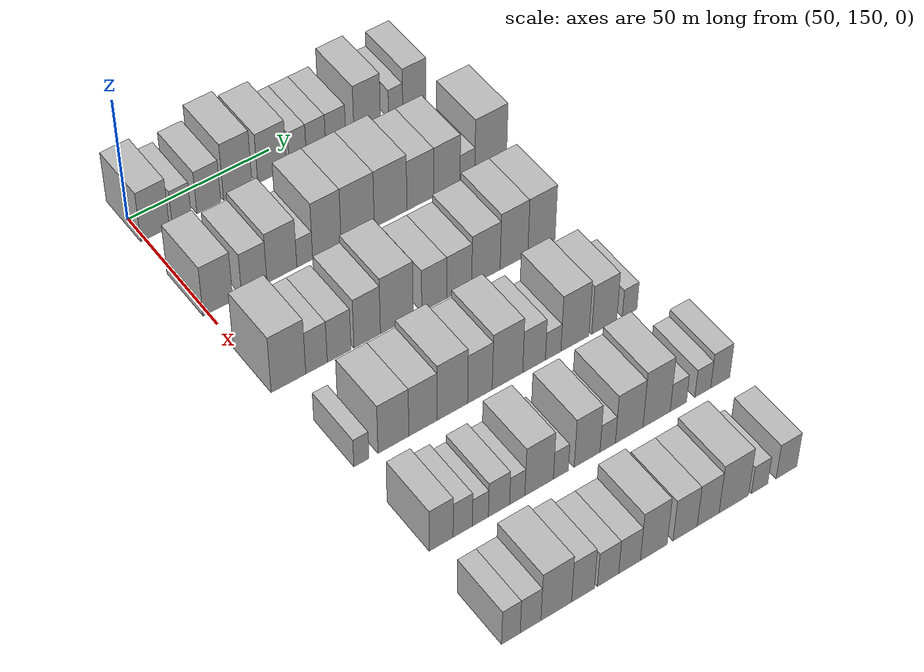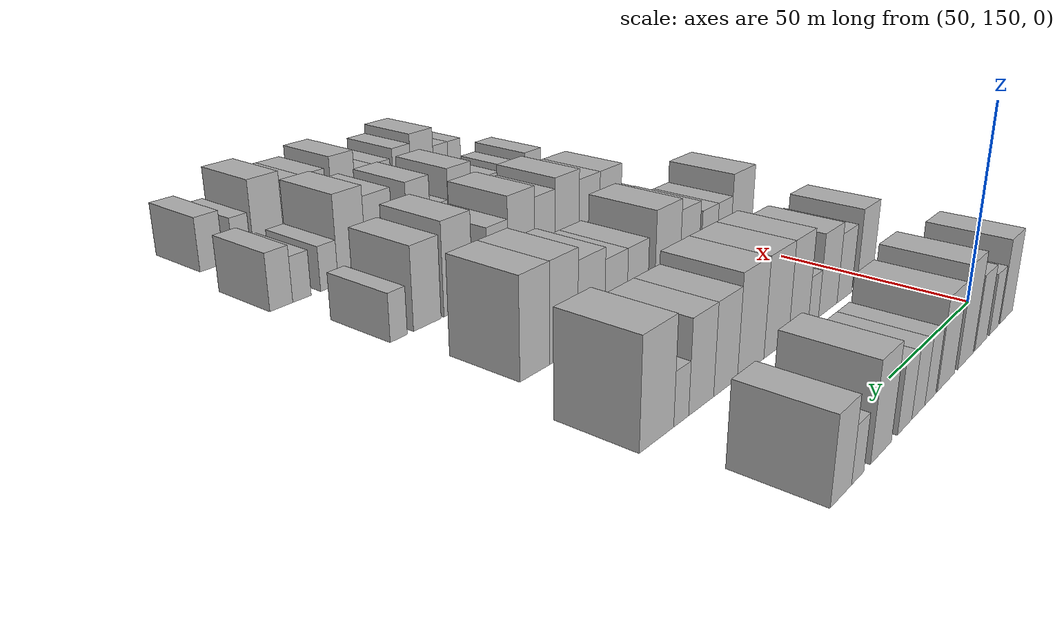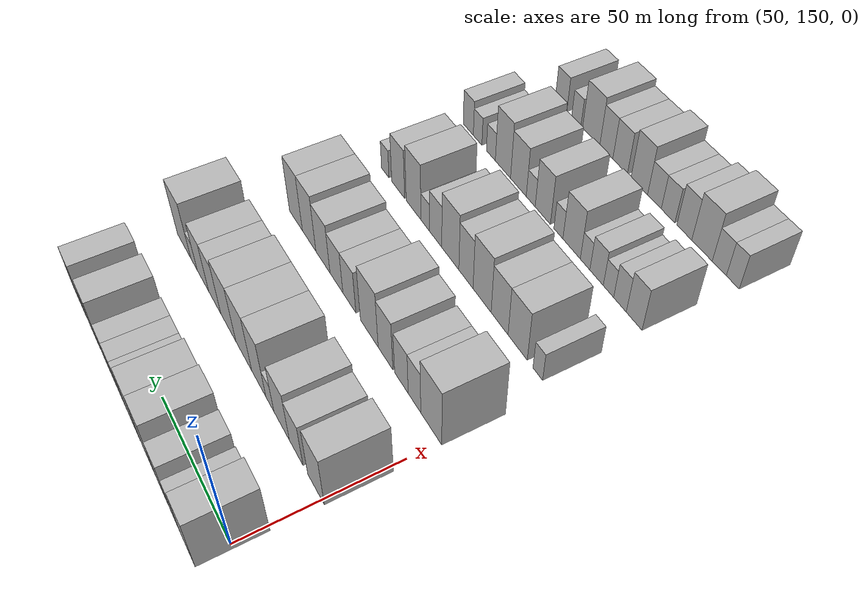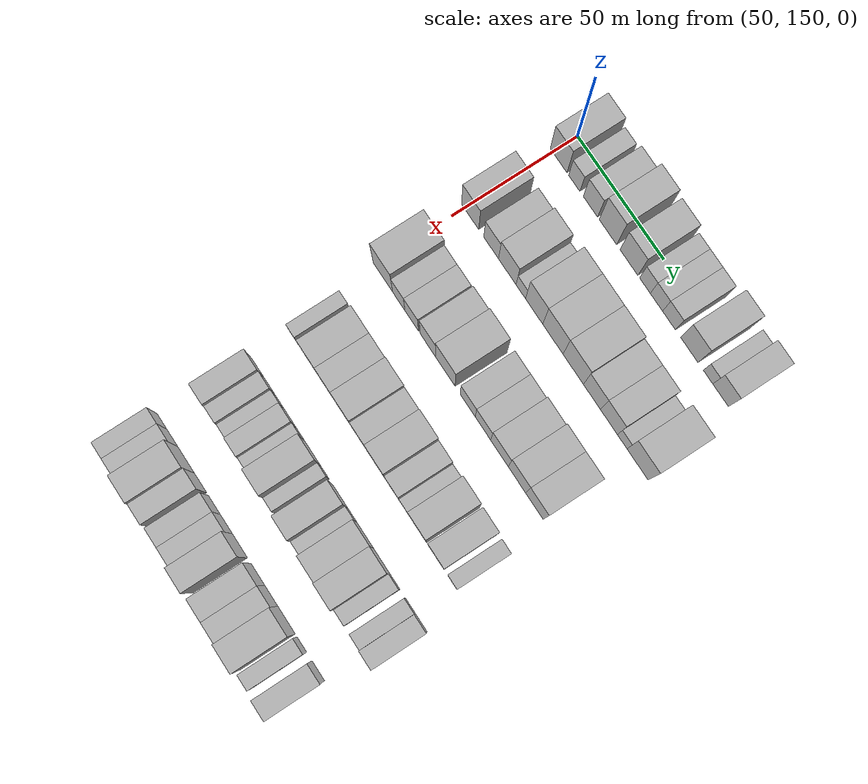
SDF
<sdf version="1.6">
 <world name="default">
  <model name="building_85">
   <static>1</static>
   <pose>50.0000 153.4325 0 0.000000 0.000000 0.000000</pose>
   <link name="link">
    <pose>0 0 10.50 0 0 0</pose>
    <collision name="collision"><geometry><box><size>20.0000 9.9005 21.0000</size></box></geometry></collision>
    <visual name="visual">
     <cast_shadows>0</cast_shadows>
     <geometry><box><size>20.0000 9.9005 21.0000</size></box></geometry>
     <material>
      <script>
       <uri>model://HANNAS_wall/materials/scripts</uri>
       <uri>model://HANNAS_wall/materials/textures</uri>
       <name>vrc/HANNAS_wall</name>
      </script>
     </material>
    </visual>
   </link>
  </model>
  <model name="building_86">
   <static>1</static>
   <pose>50.0000 162.6845 0 0.000000 0.000000 0.000000</pose>
   <link name="link">
    <pose>0 0 7.50 0 0 0</pose>
    <collision name="collision"><geometry><box><size>20.0000 6.6035 15.0000</size></box></geometry></collision>
    <visual name="visual">
     <cast_shadows>0</cast_shadows>
     <geometry><box><size>20.0000 6.6035 15.0000</size></box></geometry>
     <material>
      <script>
       <uri>model://HANNAS_wall/materials/scripts</uri>
       <uri>model://HANNAS_wall/materials/textures</uri>
       <name>vrc/HANNAS_wall</name>
      </script>
     </material>
    </visual>
   </link>
  </model>
  <model name="building_87">
   <static>1</static>
   <pose>50.0000 172.1829 0 0.000000 0.000000 0.000000</pose>
   <link name="link">
    <pose>0 0 9.00 0 0 0</pose>
    <collision name="collision"><geometry><box><size>20.0000 8.3932 18.0000</size></box></geometry></collision>
    <visual name="visual">
     <cast_shadows>0</cast_shadows>
     <geometry><box><size>20.0000 8.3932 18.0000</size></box></geometry>
     <material>
      <script>
       <uri>model://HANNAS_wall/materials/scripts</uri>
       <uri>model://HANNAS_wall/materials/textures</uri>
       <name>vrc/HANNAS_wall</name>
      </script>
     </material>
    </visual>
   </link>
  </model>
  <model name="building_88">
   <static>1</static>
   <pose>50.0000 182.4423 0 0.000000 0.000000 0.000000</pose>
   <link name="link">
    <pose>0 0 12.00 0 0 0</pose>
    <collision name="collision"><geometry><box><size>20.0000 10.1255 24.0000</size></box></geometry></collision>
    <visual name="visual">
     <cast_shadows>0</cast_shadows>
     <geometry><box><size>20.0000 10.1255 24.0000</size></box></geometry>
     <material>
      <script>
       <uri>model://HANNAS_wall/materials/scripts</uri>
       <uri>model://HANNAS_wall/materials/textures</uri>
       <name>vrc/HANNAS_wall</name>
      </script>
     </material>
    </visual>
   </link>
  </model>
  <model name="building_89">
   <static>1</static>
   <pose>50.0000 194.6784 0 0.000000 0.000000 0.000000</pose>
   <link name="link">
    <pose>0 0 10.50 0 0 0</pose>
    <collision name="collision"><geometry><box><size>20.0000 10.3466 21.0000</size></box></geometry></collision>
    <visual name="visual">
     <cast_shadows>0</cast_shadows>
     <geometry><box><size>20.0000 10.3466 21.0000</size></box></geometry>
     <material>
      <script>
       <uri>model://HANNAS_wall/materials/scripts</uri>
       <uri>model://HANNAS_wall/materials/textures</uri>
       <name>vrc/HANNAS_wall</name>
      </script>
     </material>
    </visual>
   </link>
  </model>
  <model name="building_90">
   <static>1</static>
   <pose>50.0000 203.9374 0 0.000000 0.000000 0.000000</pose>
   <link name="link">
    <pose>0 0 7.50 0 0 0</pose>
    <collision name="collision"><geometry><box><size>20.0000 6.1715 15.0000</size></box></geometry></collision>
    <visual name="visual">
     <cast_shadows>0</cast_shadows>
     <geometry><box><size>20.0000 6.1715 15.0000</size></box></geometry>
     <material>
      <script>
       <uri>model://HANNAS_wall/materials/scripts</uri>
       <uri>model://HANNAS_wall/materials/textures</uri>
       <name>vrc/HANNAS_wall</name>
      </script>
     </material>
    </visual>
   </link>
  </model>
  <model name="building_91">
   <static>1</static>
   <pose>50.0000 210.5509 0 0.000000 0.000000 0.000000</pose>
   <link name="link">
    <pose>0 0 7.50 0 0 0</pose>
    <collision name="collision"><geometry><box><size>20.0000 7.0554 15.0000</size></box></geometry></collision>
    <visual name="visual">
     <cast_shadows>0</cast_shadows>
     <geometry><box><size>20.0000 7.0554 15.0000</size></box></geometry>
     <material>
      <script>
       <uri>model://HANNAS_wall/materials/scripts</uri>
       <uri>model://HANNAS_wall/materials/textures</uri>
       <name>vrc/HANNAS_wall</name>
      </script>
     </material>
    </visual>
   </link>
  </model>
  <model name="building_92">
   <static>1</static>
   <pose>50.0000 217.7577 0 0.000000 0.000000 0.000000</pose>
   <link name="link">
    <pose>0 0 7.50 0 0 0</pose>
    <collision name="collision"><geometry><box><size>20.0000 7.3581 15.0000</size></box></geometry></collision>
    <visual name="visual">
     <cast_shadows>0</cast_shadows>
     <geometry><box><size>20.0000 7.3581 15.0000</size></box></geometry>
     <material>
      <script>
       <uri>model://HANNAS_wall/materials/scripts</uri>
       <uri>model://HANNAS_wall/materials/textures</uri>
       <name>vrc/HANNAS_wall</name>
      </script>
     </material>
    </visual>
   </link>
  </model>
  <model name="building_93">
   <static>1</static>
   <pose>50.0000 229.3631 0 0.000000 0.000000 0.000000</pose>
   <link name="link">
    <pose>0 0 10.50 0 0 0</pose>
    <collision name="collision"><geometry><box><size>20.0000 9.8529 21.0000</size></box></geometry></collision>
    <visual name="visual">
     <cast_shadows>0</cast_shadows>
     <geometry><box><size>20.0000 9.8529 21.0000</size></box></geometry>
     <material>
      <script>
       <uri>model://HANNAS_wall/materials/scripts</uri>
       <uri>model://HANNAS_wall/materials/textures</uri>
       <name>vrc/HANNAS_wall</name>
      </script>
     </material>
    </visual>
   </link>
  </model>
  <model name="building_94">
   <static>1</static>
   <pose>50.0000 239.9638 0 0.000000 0.000000 0.000000</pose>
   <link name="link">
    <pose>0 0 6.00 0 0 0</pose>
    <collision name="collision"><geometry><box><size>20.0000 5.3483 12.0000</size></box></geometry></collision>
    <visual name="visual">
     <cast_shadows>0</cast_shadows>
     <geometry><box><size>20.0000 5.3483 12.0000</size></box></geometry>
     <material>
      <script>
       <uri>model://HANNAS_wall/materials/scripts</uri>
       <uri>model://HANNAS_wall/materials/textures</uri>
       <name>vrc/HANNAS_wall</name>
      </script>
     </material>
    </visual>
   </link>
  </model>
  <model name="building_95">
   <static>1</static>
   <pose>50.0000 247.0273 0 0.000000 0.000000 0.000000</pose>
   <link name="link">
    <pose>0 0 9.00 0 0 0</pose>
    <collision name="collision"><geometry><box><size>20.0000 8.7788 18.0000</size></box></geometry></collision>
    <visual name="visual">
     <cast_shadows>0</cast_shadows>
     <geometry><box><size>20.0000 8.7788 18.0000</size></box></geometry>
     <material>
      <script>
       <uri>model://HANNAS_wall/materials/scripts</uri>
       <uri>model://HANNAS_wall/materials/textures</uri>
       <name>vrc/HANNAS_wall</name>
      </script>
     </material>
    </visual>
   </link>
  </model>
  <model name="building_212">
   <static>1</static>
   <pose>85.0000 153.4684 0 0.000000 0.000000 0.000000</pose>
   <link name="link">
    <pose>0 0 10.50 0 0 0</pose>
    <collision name="collision"><geometry><box><size>20.0000 10.1684 21.0000</size></box></geometry></collision>
    <visual name="visual">
     <cast_shadows>0</cast_shadows>
     <geometry><box><size>20.0000 10.1684 21.0000</size></box></geometry>
     <material>
      <script>
       <uri>model://HANNAS_wall/materials/scripts</uri>
       <uri>model://HANNAS_wall/materials/textures</uri>
       <name>vrc/HANNAS_wall</name>
      </script>
     </material>
    </visual>
   </link>
  </model>
  <model name="building_213">
   <static>1</static>
   <pose>85.0000 165.9379 0 0.000000 0.000000 0.000000</pose>
   <link name="link">
    <pose>0 0 9.00 0 0 0</pose>
    <collision name="collision"><geometry><box><size>20.0000 8.7706 18.0000</size></box></geometry></collision>
    <visual name="visual">
     <cast_shadows>0</cast_shadows>
     <geometry><box><size>20.0000 8.7706 18.0000</size></box></geometry>
     <material>
      <script>
       <uri>model://HANNAS_wall/materials/scripts</uri>
       <uri>model://HANNAS_wall/materials/textures</uri>
       <name>vrc/HANNAS_wall</name>
      </script>
     </material>
    </visual>
   </link>
  </model>
  <model name="building_214">
   <static>1</static>
   <pose>85.0000 175.5141 0 0.000000 0.000000 0.000000</pose>
   <link name="link">
    <pose>0 0 10.50 0 0 0</pose>
    <collision name="collision"><geometry><box><size>20.0000 10.3818 21.0000</size></box></geometry></collision>
    <visual name="visual">
     <cast_shadows>0</cast_shadows>
     <geometry><box><size>20.0000 10.3818 21.0000</size></box></geometry>
     <material>
      <script>
       <uri>model://HANNAS_wall/materials/scripts</uri>
       <uri>model://HANNAS_wall/materials/textures</uri>
       <name>vrc/HANNAS_wall</name>
      </script>
     </material>
    </visual>
   </link>
  </model>
  <model name="building_215">
   <static>1</static>
   <pose>85.0000 183.4832 0 0.000000 0.000000 0.000000</pose>
   <link name="link">
    <pose>0 0 6.00 0 0 0</pose>
    <collision name="collision"><geometry><box><size>20.0000 5.5563 12.0000</size></box></geometry></collision>
    <visual name="visual">
     <cast_shadows>0</cast_shadows>
     <geometry><box><size>20.0000 5.5563 12.0000</size></box></geometry>
     <material>
      <script>
       <uri>model://HANNAS_wall/materials/scripts</uri>
       <uri>model://HANNAS_wall/materials/textures</uri>
       <name>vrc/HANNAS_wall</name>
      </script>
     </material>
    </visual>
   </link>
  </model>
  <model name="building_216">
   <static>1</static>
   <pose>85.0000 191.3016 0 0.000000 0.000000 0.000000</pose>
   <link name="link">
    <pose>0 0 12.00 0 0 0</pose>
    <collision name="collision"><geometry><box><size>20.0000 10.0805 24.0000</size></box></geometry></collision>
    <visual name="visual">
     <cast_shadows>0</cast_shadows>
     <geometry><box><size>20.0000 10.0805 24.0000</size></box></geometry>
     <material>
      <script>
       <uri>model://HANNAS_wall/materials/scripts</uri>
       <uri>model://HANNAS_wall/materials/textures</uri>
       <name>vrc/HANNAS_wall</name>
      </script>
     </material>
    </visual>
   </link>
  </model>
  <model name="building_217">
   <static>1</static>
   <pose>85.0000 202.2507 0 0.000000 0.000000 0.000000</pose>
   <link name="link">
    <pose>0 0 12.00 0 0 0</pose>
    <collision name="collision"><geometry><box><size>20.0000 11.8178 24.0000</size></box></geometry></collision>
    <visual name="visual">
     <cast_shadows>0</cast_shadows>
     <geometry><box><size>20.0000 11.8178 24.0000</size></box></geometry>
     <material>
      <script>
       <uri>model://HANNAS_wall/materials/scripts</uri>
       <uri>model://HANNAS_wall/materials/textures</uri>
       <name>vrc/HANNAS_wall</name>
      </script>
     </material>
    </visual>
   </link>
  </model>
  <model name="building_218">
   <static>1</static>
   <pose>85.0000 214.0469 0 0.000000 0.000000 0.000000</pose>
   <link name="link">
    <pose>0 0 12.00 0 0 0</pose>
    <collision name="collision"><geometry><box><size>20.0000 11.7745 24.0000</size></box></geometry></collision>
    <visual name="visual">
     <cast_shadows>0</cast_shadows>
     <geometry><box><size>20.0000 11.7745 24.0000</size></box></geometry>
     <material>
      <script>
       <uri>model://HANNAS_wall/materials/scripts</uri>
       <uri>model://HANNAS_wall/materials/textures</uri>
       <name>vrc/HANNAS_wall</name>
      </script>
     </material>
    </visual>
   </link>
  </model>
  <model name="building_219">
   <static>1</static>
   <pose>85.0000 224.8386 0 0.000000 0.000000 0.000000</pose>
   <link name="link">
    <pose>0 0 10.50 0 0 0</pose>
    <collision name="collision"><geometry><box><size>20.0000 9.8091 21.0000</size></box></geometry></collision>
    <visual name="visual">
     <cast_shadows>0</cast_shadows>
     <geometry><box><size>20.0000 9.8091 21.0000</size></box></geometry>
     <material>
      <script>
       <uri>model://HANNAS_wall/materials/scripts</uri>
       <uri>model://HANNAS_wall/materials/textures</uri>
       <name>vrc/HANNAS_wall</name>
      </script>
     </material>
    </visual>
   </link>
  </model>
  <model name="building_220">
   <static>1</static>
   <pose>85.0000 234.5839 0 0.000000 0.000000 0.000000</pose>
   <link name="link">
    <pose>0 0 10.50 0 0 0</pose>
    <collision name="collision"><geometry><box><size>20.0000 9.6815 21.0000</size></box></geometry></collision>
    <visual name="visual">
     <cast_shadows>0</cast_shadows>
     <geometry><box><size>20.0000 9.6815 21.0000</size></box></geometry>
     <material>
      <script>
       <uri>model://HANNAS_wall/materials/scripts</uri>
       <uri>model://HANNAS_wall/materials/textures</uri>
       <name>vrc/HANNAS_wall</name>
      </script>
     </material>
    </visual>
   </link>
  </model>
  <model name="building_221">
   <static>1</static>
   <pose>85.0000 242.1540 0 0.000000 0.000000 0.000000</pose>
   <link name="link">
    <pose>0 0 6.00 0 0 0</pose>
    <collision name="collision"><geometry><box><size>20.0000 5.4586 12.0000</size></box></geometry></collision>
    <visual name="visual">
     <cast_shadows>0</cast_shadows>
     <geometry><box><size>20.0000 5.4586 12.0000</size></box></geometry>
     <material>
      <script>
       <uri>model://HANNAS_wall/materials/scripts</uri>
       <uri>model://HANNAS_wall/materials/textures</uri>
       <name>vrc/HANNAS_wall</name>
      </script>
     </material>
    </visual>
   </link>
  </model>
  <model name="building_222">
   <static>1</static>
   <pose>85.0000 250.8206 0 0.000000 0.000000 0.000000</pose>
   <link name="link">
    <pose>0 0 12.00 0 0 0</pose>
    <collision name="collision"><geometry><box><size>20.0000 11.8745 24.0000</size></box></geometry></collision>
    <visual name="visual">
     <cast_shadows>0</cast_shadows>
     <geometry><box><size>20.0000 11.8745 24.0000</size></box></geometry>
     <material>
      <script>
       <uri>model://HANNAS_wall/materials/scripts</uri>
       <uri>model://HANNAS_wall/materials/textures</uri>
       <name>vrc/HANNAS_wall</name>
      </script>
     </material>
    </visual>
   </link>
  </model>
  <model name="building_335">
   <static>1</static>
   <pose>120.0000 155.0125 0 0.000000 0.000000 0.000000</pose>
   <link name="link">
    <pose>0 0 12.00 0 0 0</pose>
    <collision name="collision"><geometry><box><size>20.0000 11.6717 24.0000</size></box></geometry></collision>
    <visual name="visual">
     <cast_shadows>0</cast_shadows>
     <geometry><box><size>20.0000 11.6717 24.0000</size></box></geometry>
     <material>
      <script>
       <uri>model://HANNAS_wall/materials/scripts</uri>
       <uri>model://HANNAS_wall/materials/textures</uri>
       <name>vrc/HANNAS_wall</name>
      </script>
     </material>
    </visual>
   </link>
  </model>
  <model name="building_336">
   <static>1</static>
   <pose>120.0000 164.5033 0 0.000000 0.000000 0.000000</pose>
   <link name="link">
    <pose>0 0 9.00 0 0 0</pose>
    <collision name="collision"><geometry><box><size>20.0000 7.3099 18.0000</size></box></geometry></collision>
    <visual name="visual">
     <cast_shadows>0</cast_shadows>
     <geometry><box><size>20.0000 7.3099 18.0000</size></box></geometry>
     <material>
      <script>
       <uri>model://HANNAS_wall/materials/scripts</uri>
       <uri>model://HANNAS_wall/materials/textures</uri>
       <name>vrc/HANNAS_wall</name>
      </script>
     </material>
    </visual>
   </link>
  </model>
  <model name="building_337">
   <static>1</static>
   <pose>120.0000 172.2174 0 0.000000 0.000000 0.000000</pose>
   <link name="link">
    <pose>0 0 9.00 0 0 0</pose>
    <collision name="collision"><geometry><box><size>20.0000 8.1182 18.0000</size></box></geometry></collision>
    <visual name="visual">
     <cast_shadows>0</cast_shadows>
     <geometry><box><size>20.0000 8.1182 18.0000</size></box></geometry>
     <material>
      <script>
       <uri>model://HANNAS_wall/materials/scripts</uri>
       <uri>model://HANNAS_wall/materials/textures</uri>
       <name>vrc/HANNAS_wall</name>
      </script>
     </material>
    </visual>
   </link>
  </model>
  <model name="building_338">
   <static>1</static>
   <pose>120.0000 181.8532 0 0.000000 0.000000 0.000000</pose>
   <link name="link">
    <pose>0 0 10.50 0 0 0</pose>
    <collision name="collision"><geometry><box><size>20.0000 9.1535 21.0000</size></box></geometry></collision>
    <visual name="visual">
     <cast_shadows>0</cast_shadows>
     <geometry><box><size>20.0000 9.1535 21.0000</size></box></geometry>
     <material>
      <script>
       <uri>model://HANNAS_wall/materials/scripts</uri>
       <uri>model://HANNAS_wall/materials/textures</uri>
       <name>vrc/HANNAS_wall</name>
      </script>
     </material>
    </visual>
   </link>
  </model>
  <model name="building_339">
   <static>1</static>
   <pose>120.0000 192.1507 0 0.000000 0.000000 0.000000</pose>
   <link name="link">
    <pose>0 0 12.00 0 0 0</pose>
    <collision name="collision"><geometry><box><size>20.0000 11.4415 24.0000</size></box></geometry></collision>
    <visual name="visual">
     <cast_shadows>0</cast_shadows>
     <geometry><box><size>20.0000 11.4415 24.0000</size></box></geometry>
     <material>
      <script>
       <uri>model://HANNAS_wall/materials/scripts</uri>
       <uri>model://HANNAS_wall/materials/textures</uri>
       <name>vrc/HANNAS_wall</name>
      </script>
     </material>
    </visual>
   </link>
  </model>
  <model name="building_340">
   <static>1</static>
   <pose>120.0000 205.2687 0 0.000000 0.000000 0.000000</pose>
   <link name="link">
    <pose>0 0 9.00 0 0 0</pose>
    <collision name="collision"><geometry><box><size>20.0000 8.7945 18.0000</size></box></geometry></collision>
    <visual name="visual">
     <cast_shadows>0</cast_shadows>
     <geometry><box><size>20.0000 8.7945 18.0000</size></box></geometry>
     <material>
      <script>
       <uri>model://HANNAS_wall/materials/scripts</uri>
       <uri>model://HANNAS_wall/materials/textures</uri>
       <name>vrc/HANNAS_wall</name>
      </script>
     </material>
    </visual>
   </link>
  </model>
  <model name="building_341">
   <static>1</static>
   <pose>120.0000 214.1536 0 0.000000 0.000000 0.000000</pose>
   <link name="link">
    <pose>0 0 9.00 0 0 0</pose>
    <collision name="collision"><geometry><box><size>20.0000 8.9752 18.0000</size></box></geometry></collision>
    <visual name="visual">
     <cast_shadows>0</cast_shadows>
     <geometry><box><size>20.0000 8.9752 18.0000</size></box></geometry>
     <material>
      <script>
       <uri>model://HANNAS_wall/materials/scripts</uri>
       <uri>model://HANNAS_wall/materials/textures</uri>
       <name>vrc/HANNAS_wall</name>
      </script>
     </material>
    </visual>
   </link>
  </model>
  <model name="building_342">
   <static>1</static>
   <pose>120.0000 223.7567 0 0.000000 0.000000 0.000000</pose>
   <link name="link">
    <pose>0 0 10.50 0 0 0</pose>
    <collision name="collision"><geometry><box><size>20.0000 10.2311 21.0000</size></box></geometry></collision>
    <visual name="visual">
     <cast_shadows>0</cast_shadows>
     <geometry><box><size>20.0000 10.2311 21.0000</size></box></geometry>
     <material>
      <script>
       <uri>model://HANNAS_wall/materials/scripts</uri>
       <uri>model://HANNAS_wall/materials/textures</uri>
       <name>vrc/HANNAS_wall</name>
      </script>
     </material>
    </visual>
   </link>
  </model>
  <model name="building_343">
   <static>1</static>
   <pose>120.0000 233.9110 0 0.000000 0.000000 0.000000</pose>
   <link name="link">
    <pose>0 0 12.00 0 0 0</pose>
    <collision name="collision"><geometry><box><size>20.0000 10.0775 24.0000</size></box></geometry></collision>
    <visual name="visual">
     <cast_shadows>0</cast_shadows>
     <geometry><box><size>20.0000 10.0775 24.0000</size></box></geometry>
     <material>
      <script>
       <uri>model://HANNAS_wall/materials/scripts</uri>
       <uri>model://HANNAS_wall/materials/textures</uri>
       <name>vrc/HANNAS_wall</name>
      </script>
     </material>
    </visual>
   </link>
  </model>
  <model name="building_344">
   <static>1</static>
   <pose>120.0000 243.9302 0 0.000000 0.000000 0.000000</pose>
   <link name="link">
    <pose>0 0 12.00 0 0 0</pose>
    <collision name="collision"><geometry><box><size>20.0000 9.9608 24.0000</size></box></geometry></collision>
    <visual name="visual">
     <cast_shadows>0</cast_shadows>
     <geometry><box><size>20.0000 9.9608 24.0000</size></box></geometry>
     <material>
      <script>
       <uri>model://HANNAS_wall/materials/scripts</uri>
       <uri>model://HANNAS_wall/materials/textures</uri>
       <name>vrc/HANNAS_wall</name>
      </script>
     </material>
    </visual>
   </link>
  </model>
  <model name="building_459">
   <static>1</static>
   <pose>155.0000 156.1623 0 0.000000 0.000000 0.000000</pose>
   <link name="link">
    <pose>0 0 6.00 0 0 0</pose>
    <collision name="collision"><geometry><box><size>20.0000 5.0198 12.0000</size></box></geometry></collision>
    <visual name="visual">
     <cast_shadows>0</cast_shadows>
     <geometry><box><size>20.0000 5.0198 12.0000</size></box></geometry>
     <material>
      <script>
       <uri>model://HANNAS_wall/materials/scripts</uri>
       <uri>model://HANNAS_wall/materials/textures</uri>
       <name>vrc/HANNAS_wall</name>
      </script>
     </material>
    </visual>
   </link>
  </model>
  <model name="building_460">
   <static>1</static>
   <pose>155.0000 166.8626 0 0.000000 0.000000 0.000000</pose>
   <link name="link">
    <pose>0 0 10.50 0 0 0</pose>
    <collision name="collision"><geometry><box><size>20.0000 10.3809 21.0000</size></box></geometry></collision>
    <visual name="visual">
     <cast_shadows>0</cast_shadows>
     <geometry><box><size>20.0000 10.3809 21.0000</size></box></geometry>
     <material>
      <script>
       <uri>model://HANNAS_wall/materials/scripts</uri>
       <uri>model://HANNAS_wall/materials/textures</uri>
       <name>vrc/HANNAS_wall</name>
      </script>
     </material>
    </visual>
   </link>
  </model>
  <model name="building_461">
   <static>1</static>
   <pose>155.0000 176.8120 0 0.000000 0.000000 0.000000</pose>
   <link name="link">
    <pose>0 0 10.50 0 0 0</pose>
    <collision name="collision"><geometry><box><size>20.0000 9.5180 21.0000</size></box></geometry></collision>
    <visual name="visual">
     <cast_shadows>0</cast_shadows>
     <geometry><box><size>20.0000 9.5180 21.0000</size></box></geometry>
     <material>
      <script>
       <uri>model://HANNAS_wall/materials/scripts</uri>
       <uri>model://HANNAS_wall/materials/textures</uri>
       <name>vrc/HANNAS_wall</name>
      </script>
     </material>
    </visual>
   </link>
  </model>
  <model name="building_462">
   <static>1</static>
   <pose>155.0000 186.8335 0 0.000000 0.000000 0.000000</pose>
   <link name="link">
    <pose>0 0 12.00 0 0 0</pose>
    <collision name="collision"><geometry><box><size>20.0000 10.5249 24.0000</size></box></geometry></collision>
    <visual name="visual">
     <cast_shadows>0</cast_shadows>
     <geometry><box><size>20.0000 10.5249 24.0000</size></box></geometry>
     <material>
      <script>
       <uri>model://HANNAS_wall/materials/scripts</uri>
       <uri>model://HANNAS_wall/materials/textures</uri>
       <name>vrc/HANNAS_wall</name>
      </script>
     </material>
    </visual>
   </link>
  </model>
  <model name="building_463">
   <static>1</static>
   <pose>155.0000 196.3749 0 0.000000 0.000000 0.000000</pose>
   <link name="link">
    <pose>0 0 10.50 0 0 0</pose>
    <collision name="collision"><geometry><box><size>20.0000 8.5579 21.0000</size></box></geometry></collision>
    <visual name="visual">
     <cast_shadows>0</cast_shadows>
     <geometry><box><size>20.0000 8.5579 21.0000</size></box></geometry>
     <material>
      <script>
       <uri>model://HANNAS_wall/materials/scripts</uri>
       <uri>model://HANNAS_wall/materials/textures</uri>
       <name>vrc/HANNAS_wall</name>
      </script>
     </material>
    </visual>
   </link>
  </model>
  <model name="building_464">
   <static>1</static>
   <pose>155.0000 205.9903 0 0.000000 0.000000 0.000000</pose>
   <link name="link">
    <pose>0 0 12.00 0 0 0</pose>
    <collision name="collision"><geometry><box><size>20.0000 10.6729 24.0000</size></box></geometry></collision>
    <visual name="visual">
     <cast_shadows>0</cast_shadows>
     <geometry><box><size>20.0000 10.6729 24.0000</size></box></geometry>
     <material>
      <script>
       <uri>model://HANNAS_wall/materials/scripts</uri>
       <uri>model://HANNAS_wall/materials/textures</uri>
       <name>vrc/HANNAS_wall</name>
      </script>
     </material>
    </visual>
   </link>
  </model>
  <model name="building_465">
   <static>1</static>
   <pose>155.0000 215.3147 0 0.000000 0.000000 0.000000</pose>
   <link name="link">
    <pose>0 0 9.00 0 0 0</pose>
    <collision name="collision"><geometry><box><size>20.0000 7.9758 18.0000</size></box></geometry></collision>
    <visual name="visual">
     <cast_shadows>0</cast_shadows>
     <geometry><box><size>20.0000 7.9758 18.0000</size></box></geometry>
     <material>
      <script>
       <uri>model://HANNAS_wall/materials/scripts</uri>
       <uri>model://HANNAS_wall/materials/textures</uri>
       <name>vrc/HANNAS_wall</name>
      </script>
     </material>
    </visual>
   </link>
  </model>
  <model name="building_466">
   <static>1</static>
   <pose>155.0000 222.0610 0 0.000000 0.000000 0.000000</pose>
   <link name="link">
    <pose>0 0 6.00 0 0 0</pose>
    <collision name="collision"><geometry><box><size>20.0000 5.5168 12.0000</size></box></geometry></collision>
    <visual name="visual">
     <cast_shadows>0</cast_shadows>
     <geometry><box><size>20.0000 5.5168 12.0000</size></box></geometry>
     <material>
      <script>
       <uri>model://HANNAS_wall/materials/scripts</uri>
       <uri>model://HANNAS_wall/materials/textures</uri>
       <name>vrc/HANNAS_wall</name>
      </script>
     </material>
    </visual>
   </link>
  </model>
  <model name="building_467">
   <static>1</static>
   <pose>155.0000 229.8469 0 0.000000 0.000000 0.000000</pose>
   <link name="link">
    <pose>0 0 12.00 0 0 0</pose>
    <collision name="collision"><geometry><box><size>20.0000 10.0551 24.0000</size></box></geometry></collision>
    <visual name="visual">
     <cast_shadows>0</cast_shadows>
     <geometry><box><size>20.0000 10.0551 24.0000</size></box></geometry>
     <material>
      <script>
       <uri>model://HANNAS_wall/materials/scripts</uri>
       <uri>model://HANNAS_wall/materials/textures</uri>
       <name>vrc/HANNAS_wall</name>
      </script>
     </material>
    </visual>
   </link>
  </model>
  <model name="building_468">
   <static>1</static>
   <pose>155.0000 240.4233 0 0.000000 0.000000 0.000000</pose>
   <link name="link">
    <pose>0 0 10.50 0 0 0</pose>
    <collision name="collision"><geometry><box><size>20.0000 9.0976 21.0000</size></box></geometry></collision>
    <visual name="visual">
     <cast_shadows>0</cast_shadows>
     <geometry><box><size>20.0000 9.0976 21.0000</size></box></geometry>
     <material>
      <script>
       <uri>model://HANNAS_wall/materials/scripts</uri>
       <uri>model://HANNAS_wall/materials/textures</uri>
       <name>vrc/HANNAS_wall</name>
      </script>
     </material>
    </visual>
   </link>
  </model>
  <model name="building_469">
   <static>1</static>
   <pose>155.0000 249.6468 0 0.000000 0.000000 0.000000</pose>
   <link name="link">
    <pose>0 0 6.00 0 0 0</pose>
    <collision name="collision"><geometry><box><size>20.0000 5.3495 12.0000</size></box></geometry></collision>
    <visual name="visual">
     <cast_shadows>0</cast_shadows>
     <geometry><box><size>20.0000 5.3495 12.0000</size></box></geometry>
     <material>
      <script>
       <uri>model://HANNAS_wall/materials/scripts</uri>
       <uri>model://HANNAS_wall/materials/textures</uri>
       <name>vrc/HANNAS_wall</name>
      </script>
     </material>
    </visual>
   </link>
  </model>
  <model name="building_589">
   <static>1</static>
   <pose>190.0000 158.3514 0 0.000000 0.000000 0.000000</pose>
   <link name="link">
    <pose>0 0 9.00 0 0 0</pose>
    <collision name="collision"><geometry><box><size>20.0000 7.8082 18.0000</size></box></geometry></collision>
    <visual name="visual">
     <cast_shadows>0</cast_shadows>
     <geometry><box><size>20.0000 7.8082 18.0000</size></box></geometry>
     <material>
      <script>
       <uri>model://HANNAS_wall/materials/scripts</uri>
       <uri>model://HANNAS_wall/materials/textures</uri>
       <name>vrc/HANNAS_wall</name>
      </script>
     </material>
    </visual>
   </link>
  </model>
  <model name="building_590">
   <static>1</static>
   <pose>190.0000 165.4515 0 0.000000 0.000000 0.000000</pose>
   <link name="link">
    <pose>0 0 7.50 0 0 0</pose>
    <collision name="collision"><geometry><box><size>20.0000 6.3918 15.0000</size></box></geometry></collision>
    <visual name="visual">
     <cast_shadows>0</cast_shadows>
     <geometry><box><size>20.0000 6.3918 15.0000</size></box></geometry>
     <material>
      <script>
       <uri>model://HANNAS_wall/materials/scripts</uri>
       <uri>model://HANNAS_wall/materials/textures</uri>
       <name>vrc/HANNAS_wall</name>
      </script>
     </material>
    </visual>
   </link>
  </model>
  <model name="building_591">
   <static>1</static>
   <pose>190.0000 171.3282 0 0.000000 0.000000 0.000000</pose>
   <link name="link">
    <pose>0 0 6.00 0 0 0</pose>
    <collision name="collision"><geometry><box><size>20.0000 5.3616 12.0000</size></box></geometry></collision>
    <visual name="visual">
     <cast_shadows>0</cast_shadows>
     <geometry><box><size>20.0000 5.3616 12.0000</size></box></geometry>
     <material>
      <script>
       <uri>model://HANNAS_wall/materials/scripts</uri>
       <uri>model://HANNAS_wall/materials/textures</uri>
       <name>vrc/HANNAS_wall</name>
      </script>
     </material>
    </visual>
   </link>
  </model>
  <model name="building_592">
   <static>1</static>
   <pose>190.0000 177.5590 0 0.000000 0.000000 0.000000</pose>
   <link name="link">
    <pose>0 0 7.50 0 0 0</pose>
    <collision name="collision"><geometry><box><size>20.0000 7.1002 15.0000</size></box></geometry></collision>
    <visual name="visual">
     <cast_shadows>0</cast_shadows>
     <geometry><box><size>20.0000 7.1002 15.0000</size></box></geometry>
     <material>
      <script>
       <uri>model://HANNAS_wall/materials/scripts</uri>
       <uri>model://HANNAS_wall/materials/textures</uri>
       <name>vrc/HANNAS_wall</name>
      </script>
     </material>
    </visual>
   </link>
  </model>
  <model name="building_593">
   <static>1</static>
   <pose>190.0000 183.6895 0 0.000000 0.000000 0.000000</pose>
   <link name="link">
    <pose>0 0 6.00 0 0 0</pose>
    <collision name="collision"><geometry><box><size>20.0000 5.1608 12.0000</size></box></geometry></collision>
    <visual name="visual">
     <cast_shadows>0</cast_shadows>
     <geometry><box><size>20.0000 5.1608 12.0000</size></box></geometry>
     <material>
      <script>
       <uri>model://HANNAS_wall/materials/scripts</uri>
       <uri>model://HANNAS_wall/materials/textures</uri>
       <name>vrc/HANNAS_wall</name>
      </script>
     </material>
    </visual>
   </link>
  </model>
  <model name="building_594">
   <static>1</static>
   <pose>190.0000 191.1136 0 0.000000 0.000000 0.000000</pose>
   <link name="link">
    <pose>0 0 10.50 0 0 0</pose>
    <collision name="collision"><geometry><box><size>20.0000 9.6873 21.0000</size></box></geometry></collision>
    <visual name="visual">
     <cast_shadows>0</cast_shadows>
     <geometry><box><size>20.0000 9.6873 21.0000</size></box></geometry>
     <material>
      <script>
       <uri>model://HANNAS_wall/materials/scripts</uri>
       <uri>model://HANNAS_wall/materials/textures</uri>
       <name>vrc/HANNAS_wall</name>
      </script>
     </material>
    </visual>
   </link>
  </model>
  <model name="building_595">
   <static>1</static>
   <pose>190.0000 198.5266 0 0.000000 0.000000 0.000000</pose>
   <link name="link">
    <pose>0 0 6.00 0 0 0</pose>
    <collision name="collision"><geometry><box><size>20.0000 5.1389 12.0000</size></box></geometry></collision>
    <visual name="visual">
     <cast_shadows>0</cast_shadows>
     <geometry><box><size>20.0000 5.1389 12.0000</size></box></geometry>
     <material>
      <script>
       <uri>model://HANNAS_wall/materials/scripts</uri>
       <uri>model://HANNAS_wall/materials/textures</uri>
       <name>vrc/HANNAS_wall</name>
      </script>
     </material>
    </visual>
   </link>
  </model>
  <model name="building_596">
   <static>1</static>
   <pose>190.0000 207.5601 0 0.000000 0.000000 0.000000</pose>
   <link name="link">
    <pose>0 0 10.50 0 0 0</pose>
    <collision name="collision"><geometry><box><size>20.0000 8.9281 21.0000</size></box></geometry></collision>
    <visual name="visual">
     <cast_shadows>0</cast_shadows>
     <geometry><box><size>20.0000 8.9281 21.0000</size></box></geometry>
     <material>
      <script>
       <uri>model://HANNAS_wall/materials/scripts</uri>
       <uri>model://HANNAS_wall/materials/textures</uri>
       <name>vrc/HANNAS_wall</name>
      </script>
     </material>
    </visual>
   </link>
  </model>
  <model name="building_597">
   <static>1</static>
   <pose>190.0000 214.7105 0 0.000000 0.000000 0.000000</pose>
   <link name="link">
    <pose>0 0 6.00 0 0 0</pose>
    <collision name="collision"><geometry><box><size>20.0000 5.3727 12.0000</size></box></geometry></collision>
    <visual name="visual">
     <cast_shadows>0</cast_shadows>
     <geometry><box><size>20.0000 5.3727 12.0000</size></box></geometry>
     <material>
      <script>
       <uri>model://HANNAS_wall/materials/scripts</uri>
       <uri>model://HANNAS_wall/materials/textures</uri>
       <name>vrc/HANNAS_wall</name>
      </script>
     </material>
    </visual>
   </link>
  </model>
  <model name="building_598">
   <static>1</static>
   <pose>190.0000 222.2485 0 0.000000 0.000000 0.000000</pose>
   <link name="link">
    <pose>0 0 10.50 0 0 0</pose>
    <collision name="collision"><geometry><box><size>20.0000 9.7035 21.0000</size></box></geometry></collision>
    <visual name="visual">
     <cast_shadows>0</cast_shadows>
     <geometry><box><size>20.0000 9.7035 21.0000</size></box></geometry>
     <material>
      <script>
       <uri>model://HANNAS_wall/materials/scripts</uri>
       <uri>model://HANNAS_wall/materials/textures</uri>
       <name>vrc/HANNAS_wall</name>
      </script>
     </material>
    </visual>
   </link>
  </model>
  <model name="building_599">
   <static>1</static>
   <pose>190.0000 231.9446 0 0.000000 0.000000 0.000000</pose>
   <link name="link">
    <pose>0 0 12.00 0 0 0</pose>
    <collision name="collision"><geometry><box><size>20.0000 9.6885 24.0000</size></box></geometry></collision>
    <visual name="visual">
     <cast_shadows>0</cast_shadows>
     <geometry><box><size>20.0000 9.6885 24.0000</size></box></geometry>
     <material>
      <script>
       <uri>model://HANNAS_wall/materials/scripts</uri>
       <uri>model://HANNAS_wall/materials/textures</uri>
       <name>vrc/HANNAS_wall</name>
      </script>
     </material>
    </visual>
   </link>
  </model>
  <model name="building_600">
   <static>1</static>
   <pose>190.0000 239.6969 0 0.000000 0.000000 0.000000</pose>
   <link name="link">
    <pose>0 0 6.00 0 0 0</pose>
    <collision name="collision"><geometry><box><size>20.0000 5.8161 12.0000</size></box></geometry></collision>
    <visual name="visual">
     <cast_shadows>0</cast_shadows>
     <geometry><box><size>20.0000 5.8161 12.0000</size></box></geometry>
     <material>
      <script>
       <uri>model://HANNAS_wall/materials/scripts</uri>
       <uri>model://HANNAS_wall/materials/textures</uri>
       <name>vrc/HANNAS_wall</name>
      </script>
     </material>
    </visual>
   </link>
  </model>
  <model name="building_601">
   <static>1</static>
   <pose>190.0000 248.4702 0 0.000000 0.000000 0.000000</pose>
   <link name="link">
    <pose>0 0 6.00 0 0 0</pose>
    <collision name="collision"><geometry><box><size>20.0000 5.7304 12.0000</size></box></geometry></collision>
    <visual name="visual">
     <cast_shadows>0</cast_shadows>
     <geometry><box><size>20.0000 5.7304 12.0000</size></box></geometry>
     <material>
      <script>
       <uri>model://HANNAS_wall/materials/scripts</uri>
       <uri>model://HANNAS_wall/materials/textures</uri>
       <name>vrc/HANNAS_wall</name>
      </script>
     </material>
    </visual>
   </link>
  </model>
  <model name="building_602">
   <static>1</static>
   <pose>190.0000 254.7834 0 0.000000 0.000000 0.000000</pose>
   <link name="link">
    <pose>0 0 7.50 0 0 0</pose>
    <collision name="collision"><geometry><box><size>20.0000 6.8961 15.0000</size></box></geometry></collision>
    <visual name="visual">
     <cast_shadows>0</cast_shadows>
     <geometry><box><size>20.0000 6.8961 15.0000</size></box></geometry>
     <material>
      <script>
       <uri>model://HANNAS_wall/materials/scripts</uri>
       <uri>model://HANNAS_wall/materials/textures</uri>
       <name>vrc/HANNAS_wall</name>
      </script>
     </material>
    </visual>
   </link>
  </model>
  <model name="building_716">
   <static>1</static>
   <pose>225.0000 155.9225 0 0.000000 0.000000 0.000000</pose>
   <link name="link">
    <pose>0 0 7.50 0 0 0</pose>
    <collision name="collision"><geometry><box><size>20.0000 6.0236 15.0000</size></box></geometry></collision>
    <visual name="visual">
     <cast_shadows>0</cast_shadows>
     <geometry><box><size>20.0000 6.0236 15.0000</size></box></geometry>
     <material>
      <script>
       <uri>model://HANNAS_wall/materials/scripts</uri>
       <uri>model://HANNAS_wall/materials/textures</uri>
       <name>vrc/HANNAS_wall</name>
      </script>
     </material>
    </visual>
   </link>
  </model>
  <model name="building_717">
   <static>1</static>
   <pose>225.0000 162.3064 0 0.000000 0.000000 0.000000</pose>
   <link name="link">
    <pose>0 0 7.50 0 0 0</pose>
    <collision name="collision"><geometry><box><size>20.0000 6.7442 15.0000</size></box></geometry></collision>
    <visual name="visual">
     <cast_shadows>0</cast_shadows>
     <geometry><box><size>20.0000 6.7442 15.0000</size></box></geometry>
     <material>
      <script>
       <uri>model://HANNAS_wall/materials/scripts</uri>
       <uri>model://HANNAS_wall/materials/textures</uri>
       <name>vrc/HANNAS_wall</name>
      </script>
     </material>
    </visual>
   </link>
  </model>
  <model name="building_718">
   <static>1</static>
   <pose>225.0000 170.7281 0 0.000000 0.000000 0.000000</pose>
   <link name="link">
    <pose>0 0 10.50 0 0 0</pose>
    <collision name="collision"><geometry><box><size>20.0000 10.0992 21.0000</size></box></geometry></collision>
    <visual name="visual">
     <cast_shadows>0</cast_shadows>
     <geometry><box><size>20.0000 10.0992 21.0000</size></box></geometry>
     <material>
      <script>
       <uri>model://HANNAS_wall/materials/scripts</uri>
       <uri>model://HANNAS_wall/materials/textures</uri>
       <name>vrc/HANNAS_wall</name>
      </script>
     </material>
    </visual>
   </link>
  </model>
  <model name="building_719">
   <static>1</static>
   <pose>225.0000 179.5634 0 0.000000 0.000000 0.000000</pose>
   <link name="link">
    <pose>0 0 9.00 0 0 0</pose>
    <collision name="collision"><geometry><box><size>20.0000 7.5714 18.0000</size></box></geometry></collision>
    <visual name="visual">
     <cast_shadows>0</cast_shadows>
     <geometry><box><size>20.0000 7.5714 18.0000</size></box></geometry>
     <material>
      <script>
       <uri>model://HANNAS_wall/materials/scripts</uri>
       <uri>model://HANNAS_wall/materials/textures</uri>
       <name>vrc/HANNAS_wall</name>
      </script>
     </material>
    </visual>
   </link>
  </model>
  <model name="building_720">
   <static>1</static>
   <pose>225.0000 187.9032 0 0.000000 0.000000 0.000000</pose>
   <link name="link">
    <pose>0 0 7.50 0 0 0</pose>
    <collision name="collision"><geometry><box><size>20.0000 7.1081 15.0000</size></box></geometry></collision>
    <visual name="visual">
     <cast_shadows>0</cast_shadows>
     <geometry><box><size>20.0000 7.1081 15.0000</size></box></geometry>
     <material>
      <script>
       <uri>model://HANNAS_wall/materials/scripts</uri>
       <uri>model://HANNAS_wall/materials/textures</uri>
       <name>vrc/HANNAS_wall</name>
      </script>
     </material>
    </visual>
   </link>
  </model>
  <model name="building_721">
   <static>1</static>
   <pose>225.0000 195.1234 0 0.000000 0.000000 0.000000</pose>
   <link name="link">
    <pose>0 0 7.50 0 0 0</pose>
    <collision name="collision"><geometry><box><size>20.0000 7.3323 15.0000</size></box></geometry></collision>
    <visual name="visual">
     <cast_shadows>0</cast_shadows>
     <geometry><box><size>20.0000 7.3323 15.0000</size></box></geometry>
     <material>
      <script>
       <uri>model://HANNAS_wall/materials/scripts</uri>
       <uri>model://HANNAS_wall/materials/textures</uri>
       <name>vrc/HANNAS_wall</name>
      </script>
     </material>
    </visual>
   </link>
  </model>
  <model name="building_722">
   <static>1</static>
   <pose>225.0000 203.3533 0 0.000000 0.000000 0.000000</pose>
   <link name="link">
    <pose>0 0 10.50 0 0 0</pose>
    <collision name="collision"><geometry><box><size>20.0000 9.1275 21.0000</size></box></geometry></collision>
    <visual name="visual">
     <cast_shadows>0</cast_shadows>
     <geometry><box><size>20.0000 9.1275 21.0000</size></box></geometry>
     <material>
      <script>
       <uri>model://HANNAS_wall/materials/scripts</uri>
       <uri>model://HANNAS_wall/materials/textures</uri>
       <name>vrc/HANNAS_wall</name>
      </script>
     </material>
    </visual>
   </link>
  </model>
  <model name="building_723">
   <static>1</static>
   <pose>225.0000 214.0767 0 0.000000 0.000000 0.000000</pose>
   <link name="link">
    <pose>0 0 9.00 0 0 0</pose>
    <collision name="collision"><geometry><box><size>20.0000 8.3192 18.0000</size></box></geometry></collision>
    <visual name="visual">
     <cast_shadows>0</cast_shadows>
     <geometry><box><size>20.0000 8.3192 18.0000</size></box></geometry>
     <material>
      <script>
       <uri>model://HANNAS_wall/materials/scripts</uri>
       <uri>model://HANNAS_wall/materials/textures</uri>
       <name>vrc/HANNAS_wall</name>
      </script>
     </material>
    </visual>
   </link>
  </model>
  <model name="building_724">
   <static>1</static>
   <pose>225.0000 222.0432 0 0.000000 0.000000 0.000000</pose>
   <link name="link">
    <pose>0 0 9.00 0 0 0</pose>
    <collision name="collision"><geometry><box><size>20.0000 7.6138 18.0000</size></box></geometry></collision>
    <visual name="visual">
     <cast_shadows>0</cast_shadows>
     <geometry><box><size>20.0000 7.6138 18.0000</size></box></geometry>
     <material>
      <script>
       <uri>model://HANNAS_wall/materials/scripts</uri>
       <uri>model://HANNAS_wall/materials/textures</uri>
       <name>vrc/HANNAS_wall</name>
      </script>
     </material>
    </visual>
   </link>
  </model>
  <model name="building_725">
   <static>1</static>
   <pose>225.0000 231.0256 0 0.000000 0.000000 0.000000</pose>
   <link name="link">
    <pose>0 0 10.50 0 0 0</pose>
    <collision name="collision"><geometry><box><size>20.0000 10.3511 21.0000</size></box></geometry></collision>
    <visual name="visual">
     <cast_shadows>0</cast_shadows>
     <geometry><box><size>20.0000 10.3511 21.0000</size></box></geometry>
     <material>
      <script>
       <uri>model://HANNAS_wall/materials/scripts</uri>
       <uri>model://HANNAS_wall/materials/textures</uri>
       <name>vrc/HANNAS_wall</name>
      </script>
     </material>
    </visual>
   </link>
  </model>
  <model name="building_726">
   <static>1</static>
   <pose>225.0000 240.0879 0 0.000000 0.000000 0.000000</pose>
   <link name="link">
    <pose>0 0 6.00 0 0 0</pose>
    <collision name="collision"><geometry><box><size>20.0000 5.7734 12.0000</size></box></geometry></collision>
    <visual name="visual">
     <cast_shadows>0</cast_shadows>
     <geometry><box><size>20.0000 5.7734 12.0000</size></box></geometry>
     <material>
      <script>
       <uri>model://HANNAS_wall/materials/scripts</uri>
       <uri>model://HANNAS_wall/materials/textures</uri>
       <name>vrc/HANNAS_wall</name>
      </script>
     </material>
    </visual>
   </link>
  </model>
  <model name="building_727">
   <static>1</static>
   <pose>225.0000 249.6718 0 0.000000 0.000000 0.000000</pose>
   <link name="link">
    <pose>0 0 7.50 0 0 0</pose>
    <collision name="collision"><geometry><box><size>20.0000 7.3943 15.0000</size></box></geometry></collision>
    <visual name="visual">
     <cast_shadows>0</cast_shadows>
     <geometry><box><size>20.0000 7.3943 15.0000</size></box></geometry>
     <material>
      <script>
       <uri>model://HANNAS_wall/materials/scripts</uri>
       <uri>model://HANNAS_wall/materials/textures</uri>
       <name>vrc/HANNAS_wall</name>
      </script>
     </material>
    </visual>
   </link>
  </model>
 </world>
</sdf>
